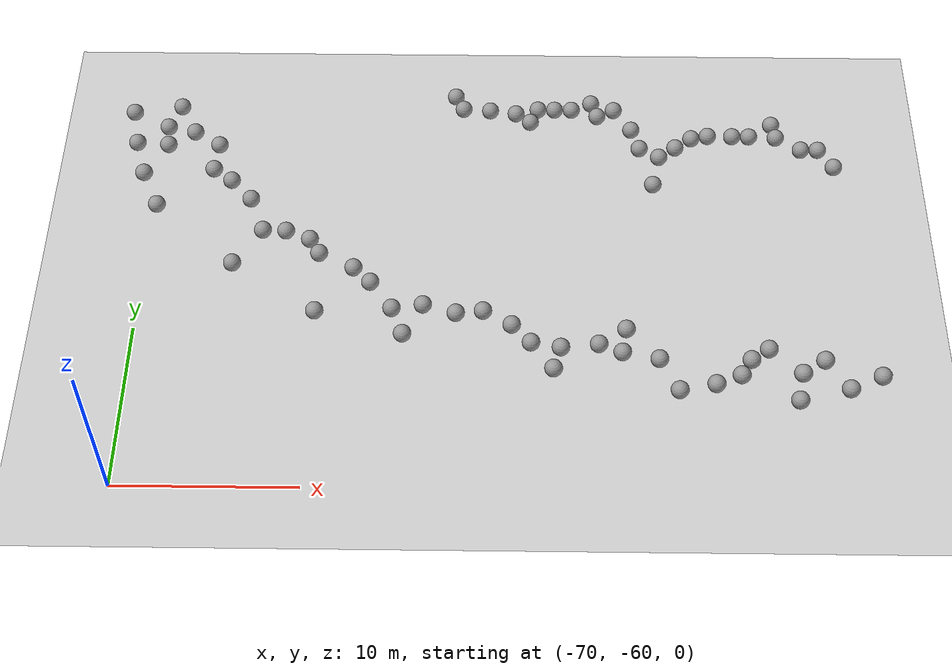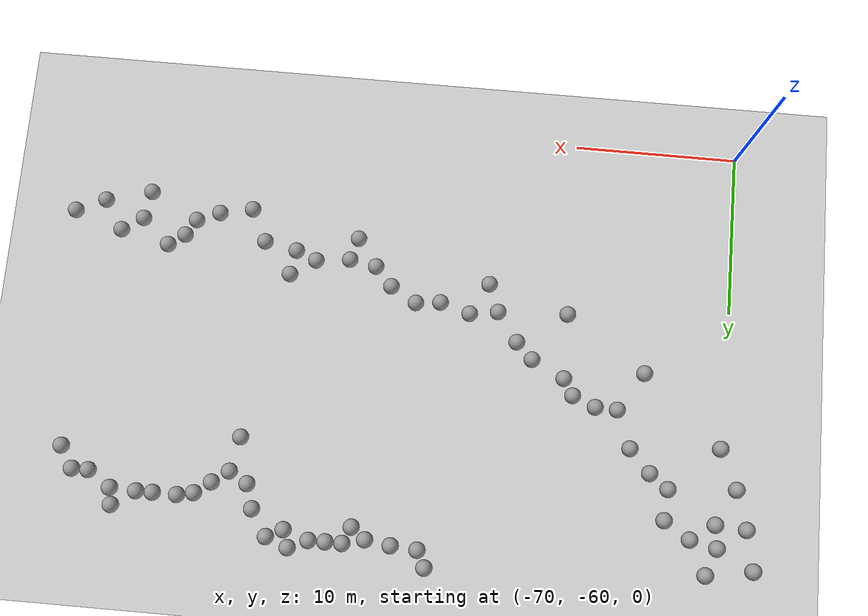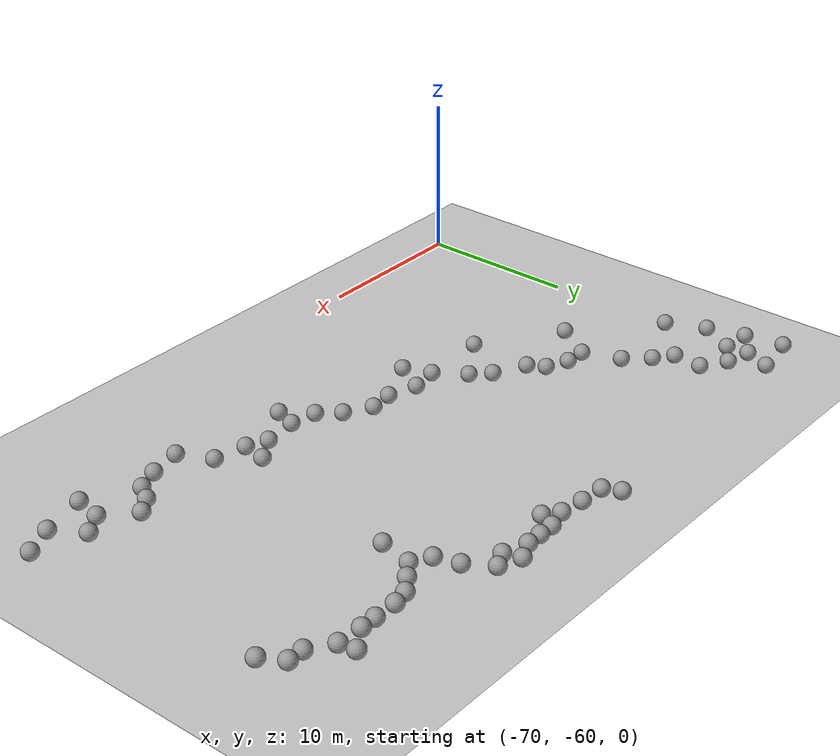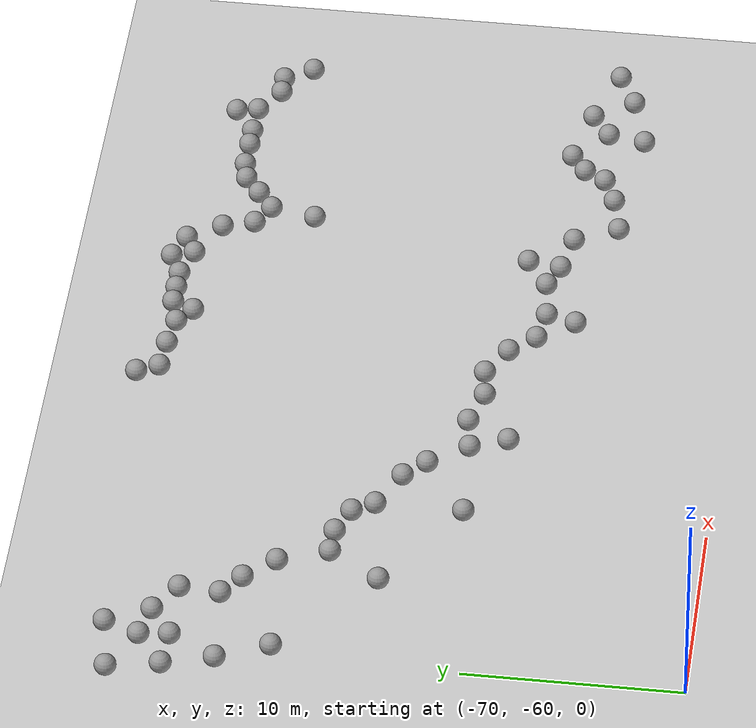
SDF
<sdf version="1.6">
 <world name="default">
  <model name="ground_plane">
   <static>1</static>
   <link name="link">
    <collision name="collision">
     <geometry><plane><normal>0 0 1</normal><size>100 100</size></plane></geometry>
     <surface><friction><ode><mu>100</mu><mu2>50</mu2></ode></friction></surface>
    </collision>
    <visual name="visual">
     <cast_shadows>0</cast_shadows>
     <geometry><plane><normal>0 0 1</normal><size>100 100</size></plane></geometry>
     <material>
      <script><uri>file://media/materials/scripts/gazebo.material</uri><name>Gazebo/Grey</name></script>
     </material>
    </visual>
   </link>
  </model>
  <model name="unit_sphere_0_clone_32">
   <pose>-35.0036 -51.2997 0.5 0 -0 0</pose>
   <link name="link">
    <inertial>
     <mass>1</mass>
     <inertia><ixx>0.1</ixx><ixy>0</ixy><ixz>0</ixz><iyy>0.1</iyy><iyz>0</iyz><izz>0.1</izz></inertia>
    </inertial>
    <collision name="collision"><geometry><sphere><radius>0.5</radius></sphere></geometry></collision>
    <visual name="visual">
     <geometry><sphere><radius>0.5</radius></sphere></geometry>
     <material>
      <script><name>Gazebo/Grey</name><uri>file://media/materials/scripts/gazebo.material</uri></script>
     </material>
    </visual>
   </link>
  </model>
  <model name="unit_sphere_0_clone_33">
   <pose>-42.7451 -50.0544 0.5 0 -0 0</pose>
   <link name="link">
    <inertial>
     <mass>1</mass>
     <inertia><ixx>0.1</ixx><ixy>0</ixy><ixz>0</ixz><iyy>0.1</iyy><iyz>0</iyz><izz>0.1</izz></inertia>
    </inertial>
    <collision name="collision"><geometry><sphere><radius>0.5</radius></sphere></geometry></collision>
    <visual name="visual">
     <geometry><sphere><radius>0.5</radius></sphere></geometry>
     <material>
      <script><name>Gazebo/Grey</name><uri>file://media/materials/scripts/gazebo.material</uri></script>
     </material>
    </visual>
   </link>
  </model>
  <model name="unit_sphere_0_clone_34">
   <pose>-50.6516 -48.9094 0.5 0 -0 0</pose>
   <link name="link">
    <inertial>
     <mass>1</mass>
     <inertia><ixx>0.1</ixx><ixy>0</ixy><ixz>0</ixz><iyy>0.1</iyy><iyz>0</iyz><izz>0.1</izz></inertia>
    </inertial>
    <collision name="collision"><geometry><sphere><radius>0.5</radius></sphere></geometry></collision>
    <visual name="visual">
     <geometry><sphere><radius>0.5</radius></sphere></geometry>
     <material>
      <script><name>Gazebo/Grey</name><uri>file://media/materials/scripts/gazebo.material</uri></script>
     </material>
    </visual>
   </link>
  </model>
  <model name="unit_sphere_0_clone_35">
   <pose>-60 -45 0.5 0 -0 0</pose>
   <link name="link">
    <inertial>
     <mass>1</mass>
     <inertia><ixx>0.1</ixx><ixy>0</ixy><ixz>0</ixz><iyy>0.1</iyy><iyz>0</iyz><izz>0.1</izz></inertia>
    </inertial>
    <collision name="collision"><geometry><sphere><radius>0.5</radius></sphere></geometry></collision>
    <visual name="visual">
     <geometry><sphere><radius>0.5</radius></sphere></geometry>
     <material>
      <script><name>Gazebo/Grey</name><uri>file://media/materials/scripts/gazebo.material</uri></script>
     </material>
    </visual>
   </link>
  </model>
  <model name="unit_sphere_0_clone_36">
   <pose>-66.593 -38.8584 0.5 0 -0 0</pose>
   <link name="link">
    <inertial>
     <mass>1</mass>
     <inertia><ixx>0.1</ixx><ixy>0</ixy><ixz>0</ixz><iyy>0.1</iyy><iyz>0</iyz><izz>0.1</izz></inertia>
    </inertial>
    <collision name="collision"><geometry><sphere><radius>0.5</radius></sphere></geometry></collision>
    <visual name="visual">
     <geometry><sphere><radius>0.5</radius></sphere></geometry>
     <material>
      <script><name>Gazebo/Grey</name><uri>file://media/materials/scripts/gazebo.material</uri></script>
     </material>
    </visual>
   </link>
  </model>
  <model name="unit_sphere_0_clone_59">
   <pose>-40.8608 -39.7517 0.5 0 -0 0</pose>
   <link name="link">
    <inertial>
     <mass>1</mass>
     <inertia><ixx>0.1</ixx><ixy>0</ixy><ixz>0</ixz><iyy>0.1</iyy><iyz>0</iyz><izz>0.1</izz></inertia>
    </inertial>
    <collision name="collision"><geometry><sphere><radius>0.5</radius></sphere></geometry></collision>
    <visual name="visual">
     <geometry><sphere><radius>0.5</radius></sphere></geometry>
     <material>
      <script><name>Gazebo/Grey</name><uri>file://media/materials/scripts/gazebo.material</uri></script>
     </material>
    </visual>
   </link>
  </model>
  <model name="unit_sphere_0_clone_79">
   <pose>-33.6084 -35.0655 0.5 -0.021126 -0.004099 2.9e-05</pose>
   <link name="link">
    <inertial>
     <mass>1</mass>
     <inertia><ixx>0.1</ixx><ixy>0</ixy><ixz>0</ixz><iyy>0.1</iyy><iyz>0</iyz><izz>0.1</izz></inertia>
    </inertial>
    <collision name="collision"><geometry><sphere><radius>0.5</radius></sphere></geometry></collision>
    <visual name="visual">
     <geometry><sphere><radius>0.5</radius></sphere></geometry>
     <material>
      <script><name>Gazebo/Grey</name><uri>file://media/materials/scripts/gazebo.material</uri></script>
     </material>
    </visual>
   </link>
  </model>
  <model name="unit_sphere_0_clone_80">
   <pose>-38.447 -36.1913 0.5 0.001999 -0.009864 -2.4e-05</pose>
   <link name="link">
    <inertial>
     <mass>1</mass>
     <inertia><ixx>0.1</ixx><ixy>0</ixy><ixz>0</ixz><iyy>0.1</iyy><iyz>0</iyz><izz>0.1</izz></inertia>
    </inertial>
    <collision name="collision"><geometry><sphere><radius>0.5</radius></sphere></geometry></collision>
    <visual name="visual">
     <geometry><sphere><radius>0.5</radius></sphere></geometry>
     <material>
      <script><name>Gazebo/Grey</name><uri>file://media/materials/scripts/gazebo.material</uri></script>
     </material>
    </visual>
   </link>
  </model>
  <model name="unit_sphere_0_clone_81">
   <pose>-44.3514 -33.4726 0.5 0 -0 0</pose>
   <link name="link">
    <inertial>
     <mass>1</mass>
     <inertia><ixx>0.1</ixx><ixy>0</ixy><ixz>0</ixz><iyy>0.1</iyy><iyz>0</iyz><izz>0.1</izz></inertia>
    </inertial>
    <collision name="collision"><geometry><sphere><radius>0.5</radius></sphere></geometry></collision>
    <visual name="visual">
     <geometry><sphere><radius>0.5</radius></sphere></geometry>
     <material>
      <script><name>Gazebo/Grey</name><uri>file://media/materials/scripts/gazebo.material</uri></script>
     </material>
    </visual>
   </link>
  </model>
  <model name="unit_sphere_0_clone_82">
   <pose>-48.8628 -34.3303 0.5 0 -0 0</pose>
   <link name="link">
    <inertial>
     <mass>1</mass>
     <inertia><ixx>0.1</ixx><ixy>0</ixy><ixz>0</ixz><iyy>0.1</iyy><iyz>0</iyz><izz>0.1</izz></inertia>
    </inertial>
    <collision name="collision"><geometry><sphere><radius>0.5</radius></sphere></geometry></collision>
    <visual name="visual">
     <geometry><sphere><radius>0.5</radius></sphere></geometry>
     <material>
      <script><name>Gazebo/Grey</name><uri>file://media/materials/scripts/gazebo.material</uri></script>
     </material>
    </visual>
   </link>
  </model>
  <model name="unit_sphere_0_clone_95">
   <pose>-71.8064 -34.4733 0.5 0 -0 0</pose>
   <link name="link">
    <inertial>
     <mass>1</mass>
     <inertia><ixx>0.1</ixx><ixy>0</ixy><ixz>0</ixz><iyy>0.1</iyy><iyz>0</iyz><izz>0.1</izz></inertia>
    </inertial>
    <collision name="collision"><geometry><sphere><radius>0.5</radius></sphere></geometry></collision>
    <visual name="visual">
     <geometry><sphere><radius>0.5</radius></sphere></geometry>
     <material>
      <script><name>Gazebo/Grey</name><uri>file://media/materials/scripts/gazebo.material</uri></script>
     </material>
    </visual>
   </link>
  </model>
  <model name="unit_sphere_0_clone_134">
   <pose>-33.5925 -54.5777 0.5 0 -0 0</pose>
   <link name="link">
    <inertial>
     <mass>1</mass>
     <inertia><ixx>0.1</ixx><ixy>0</ixy><ixz>0</ixz><iyy>0.1</iyy><iyz>0</iyz><izz>0.1</izz></inertia>
    </inertial>
    <collision name="collision"><geometry><sphere><radius>0.5</radius></sphere></geometry></collision>
    <visual name="visual">
     <geometry><sphere><radius>0.5</radius></sphere></geometry>
     <material>
      <script><name>Gazebo/Grey</name><uri>file://media/materials/scripts/gazebo.material</uri></script>
     </material>
    </visual>
   </link>
  </model>
  <model name="unit_sphere_0_clone_135">
   <pose>-40 -54 0.5 0 -0 0</pose>
   <link name="link">
    <inertial>
     <mass>1</mass>
     <inertia><ixx>0.1</ixx><ixy>0</ixy><ixz>0</ixz><iyy>0.1</iyy><iyz>0</iyz><izz>0.1</izz></inertia>
    </inertial>
    <collision name="collision"><geometry><sphere><radius>0.5</radius></sphere></geometry></collision>
    <visual name="visual">
     <geometry><sphere><radius>0.5</radius></sphere></geometry>
     <material>
      <script><name>Gazebo/Grey</name><uri>file://media/materials/scripts/gazebo.material</uri></script>
     </material>
    </visual>
   </link>
  </model>
  <model name="unit_sphere_0_clone_136">
   <pose>-46.775 -52.6831 0.5 0 -0 0</pose>
   <link name="link">
    <inertial>
     <mass>1</mass>
     <inertia><ixx>0.1</ixx><ixy>0</ixy><ixz>0</ixz><iyy>0.1</iyy><iyz>0</iyz><izz>0.1</izz></inertia>
    </inertial>
    <collision name="collision"><geometry><sphere><radius>0.5</radius></sphere></geometry></collision>
    <visual name="visual">
     <geometry><sphere><radius>0.5</radius></sphere></geometry>
     <material>
      <script><name>Gazebo/Grey</name><uri>file://media/materials/scripts/gazebo.material</uri></script>
     </material>
    </visual>
   </link>
  </model>
  <model name="unit_sphere_0_clone_137">
   <pose>-55.0734 -50.4876 0.5 0 -0 0</pose>
   <link name="link">
    <inertial>
     <mass>1</mass>
     <inertia><ixx>0.1</ixx><ixy>0</ixy><ixz>0</ixz><iyy>0.1</iyy><iyz>0</iyz><izz>0.1</izz></inertia>
    </inertial>
    <collision name="collision"><geometry><sphere><radius>0.5</radius></sphere></geometry></collision>
    <visual name="visual">
     <geometry><sphere><radius>0.5</radius></sphere></geometry>
     <material>
      <script><name>Gazebo/Grey</name><uri>file://media/materials/scripts/gazebo.material</uri></script>
     </material>
    </visual>
   </link>
  </model>
  <model name="unit_sphere_0_clone_138">
   <pose>-60 -49 0.5 0 -0 0</pose>
   <link name="link">
    <inertial>
     <mass>1</mass>
     <inertia><ixx>0.1</ixx><ixy>0</ixy><ixz>0</ixz><iyy>0.1</iyy><iyz>0</iyz><izz>0.1</izz></inertia>
    </inertial>
    <collision name="collision"><geometry><sphere><radius>0.5</radius></sphere></geometry></collision>
    <visual name="visual">
     <geometry><sphere><radius>0.5</radius></sphere></geometry>
     <material>
      <script><name>Gazebo/Grey</name><uri>file://media/materials/scripts/gazebo.material</uri></script>
     </material>
    </visual>
   </link>
  </model>
  <model name="unit_sphere_0_clone_139">
   <pose>-55.7295 -48.7844 0.5 0 -0 0</pose>
   <link name="link">
    <inertial>
     <mass>1</mass>
     <inertia><ixx>0.1</ixx><ixy>0</ixy><ixz>0</ixz><iyy>0.1</iyy><iyz>0</iyz><izz>0.1</izz></inertia>
    </inertial>
    <collision name="collision"><geometry><sphere><radius>0.5</radius></sphere></geometry></collision>
    <visual name="visual">
     <geometry><sphere><radius>0.5</radius></sphere></geometry>
     <material>
      <script><name>Gazebo/Grey</name><uri>file://media/materials/scripts/gazebo.material</uri></script>
     </material>
    </visual>
   </link>
  </model>
  <model name="unit_sphere_0_clone_140">
   <pose>-63.3376 -43.3689 0.5 0 -0 0</pose>
   <link name="link">
    <inertial>
     <mass>1</mass>
     <inertia><ixx>0.1</ixx><ixy>0</ixy><ixz>0</ixz><iyy>0.1</iyy><iyz>0</iyz><izz>0.1</izz></inertia>
    </inertial>
    <collision name="collision"><geometry><sphere><radius>0.5</radius></sphere></geometry></collision>
    <visual name="visual">
     <geometry><sphere><radius>0.5</radius></sphere></geometry>
     <material>
      <script><name>Gazebo/Grey</name><uri>file://media/materials/scripts/gazebo.material</uri></script>
     </material>
    </visual>
   </link>
  </model>
  <model name="unit_sphere_0_clone_141">
   <pose>-64.8756 -45.7378 0.5 0 -0 0</pose>
   <link name="link">
    <inertial>
     <mass>1</mass>
     <inertia><ixx>0.1</ixx><ixy>0</ixy><ixz>0</ixz><iyy>0.1</iyy><iyz>0</iyz><izz>0.1</izz></inertia>
    </inertial>
    <collision name="collision"><geometry><sphere><radius>0.5</radius></sphere></geometry></collision>
    <visual name="visual">
     <geometry><sphere><radius>0.5</radius></sphere></geometry>
     <material>
      <script><name>Gazebo/Grey</name><uri>file://media/materials/scripts/gazebo.material</uri></script>
     </material>
    </visual>
   </link>
  </model>
  <model name="unit_sphere_0_clone_142">
   <pose>-64.2136 -41.0942 0.5 0 -0 0</pose>
   <link name="link">
    <inertial>
     <mass>1</mass>
     <inertia><ixx>0.1</ixx><ixy>0</ixy><ixz>0</ixz><iyy>0.1</iyy><iyz>0</iyz><izz>0.1</izz></inertia>
    </inertial>
    <collision name="collision"><geometry><sphere><radius>0.5</radius></sphere></geometry></collision>
    <visual name="visual">
     <geometry><sphere><radius>0.5</radius></sphere></geometry>
     <material>
      <script><name>Gazebo/Grey</name><uri>file://media/materials/scripts/gazebo.material</uri></script>
     </material>
    </visual>
   </link>
  </model>
  <model name="unit_sphere_0_clone_143">
   <pose>-69.6462 -41.5438 0.5 0 -0 0</pose>
   <link name="link">
    <inertial>
     <mass>1</mass>
     <inertia><ixx>0.1</ixx><ixy>0</ixy><ixz>0</ixz><iyy>0.1</iyy><iyz>0</iyz><izz>0.1</izz></inertia>
    </inertial>
    <collision name="collision"><geometry><sphere><radius>0.5</radius></sphere></geometry></collision>
    <visual name="visual">
     <geometry><sphere><radius>0.5</radius></sphere></geometry>
     <material>
      <script><name>Gazebo/Grey</name><uri>file://media/materials/scripts/gazebo.material</uri></script>
     </material>
    </visual>
   </link>
  </model>
  <model name="unit_sphere_0_clone_144">
   <pose>-69.6289 -35.619 0.5 0 -0 0</pose>
   <link name="link">
    <inertial>
     <mass>1</mass>
     <inertia><ixx>0.1</ixx><ixy>0</ixy><ixz>0</ixz><iyy>0.1</iyy><iyz>0</iyz><izz>0.1</izz></inertia>
    </inertial>
    <collision name="collision"><geometry><sphere><radius>0.5</radius></sphere></geometry></collision>
    <visual name="visual">
     <geometry><sphere><radius>0.5</radius></sphere></geometry>
     <material>
      <script><name>Gazebo/Grey</name><uri>file://media/materials/scripts/gazebo.material</uri></script>
     </material>
    </visual>
   </link>
  </model>
  <model name="unit_sphere_1_clone_47">
   <pose>-30.1874 -38.3144 0.5 0 -0 0</pose>
   <link name="link">
    <inertial>
     <mass>1</mass>
     <inertia><ixx>0.1</ixx><ixy>0</ixy><ixz>0</ixz><iyy>0.1</iyy><iyz>0</iyz><izz>0.1</izz></inertia>
    </inertial>
    <collision name="collision"><geometry><sphere><radius>0.5</radius></sphere></geometry></collision>
    <visual name="visual">
     <geometry><sphere><radius>0.5</radius></sphere></geometry>
     <material>
      <script><name>Gazebo/Grey</name><uri>file://media/materials/scripts/gazebo.material</uri></script>
     </material>
    </visual>
   </link>
  </model>
  <model name="unit_sphere_1_clone_48">
   <pose>-31 -37 0.5 0 -0 0</pose>
   <link name="link">
    <inertial>
     <mass>1</mass>
     <inertia><ixx>0.1</ixx><ixy>0</ixy><ixz>0</ixz><iyy>0.1</iyy><iyz>0</iyz><izz>0.1</izz></inertia>
    </inertial>
    <collision name="collision"><geometry><sphere><radius>0.5</radius></sphere></geometry></collision>
    <visual name="visual">
     <geometry><sphere><radius>0.5</radius></sphere></geometry>
     <material>
      <script><name>Gazebo/Grey</name><uri>file://media/materials/scripts/gazebo.material</uri></script>
     </material>
    </visual>
   </link>
  </model>
  <model name="unit_sphere_1_clone_49">
   <pose>-32 -37 0.5 0 -0 0</pose>
   <link name="link">
    <inertial>
     <mass>1</mass>
     <inertia><ixx>0.1</ixx><ixy>0</ixy><ixz>0</ixz><iyy>0.1</iyy><iyz>0</iyz><izz>0.1</izz></inertia>
    </inertial>
    <collision name="collision"><geometry><sphere><radius>0.5</radius></sphere></geometry></collision>
    <visual name="visual">
     <geometry><sphere><radius>0.5</radius></sphere></geometry>
     <material>
      <script><name>Gazebo/Grey</name><uri>file://media/materials/scripts/gazebo.material</uri></script>
     </material>
    </visual>
   </link>
  </model>
  <model name="unit_sphere_1_clone_50">
   <pose>-33.4139 -36.0682 0.5 0.021036 0.004181 3e-05</pose>
   <link name="link">
    <inertial>
     <mass>1</mass>
     <inertia><ixx>0.1</ixx><ixy>0</ixy><ixz>0</ixz><iyy>0.1</iyy><iyz>0</iyz><izz>0.1</izz></inertia>
    </inertial>
    <collision name="collision"><geometry><sphere><radius>0.5</radius></sphere></geometry></collision>
    <visual name="visual">
     <geometry><sphere><radius>0.5</radius></sphere></geometry>
     <material>
      <script><name>Gazebo/Grey</name><uri>file://media/materials/scripts/gazebo.material</uri></script>
     </material>
    </visual>
   </link>
  </model>
  <model name="unit_sphere_1_clone_51">
   <pose>-35 -36 0.5 0 -0 0</pose>
   <link name="link">
    <inertial>
     <mass>1</mass>
     <inertia><ixx>0.1</ixx><ixy>0</ixy><ixz>0</ixz><iyy>0.1</iyy><iyz>0</iyz><izz>0.1</izz></inertia>
    </inertial>
    <collision name="collision"><geometry><sphere><radius>0.5</radius></sphere></geometry></collision>
    <visual name="visual">
     <geometry><sphere><radius>0.5</radius></sphere></geometry>
     <material>
      <script><name>Gazebo/Grey</name><uri>file://media/materials/scripts/gazebo.material</uri></script>
     </material>
    </visual>
   </link>
  </model>
  <model name="unit_sphere_1_clone_52">
   <pose>-36 -36 0.5 0 -0 0</pose>
   <link name="link">
    <inertial>
     <mass>1</mass>
     <inertia><ixx>0.1</ixx><ixy>0</ixy><ixz>0</ixz><iyy>0.1</iyy><iyz>0</iyz><izz>0.1</izz></inertia>
    </inertial>
    <collision name="collision"><geometry><sphere><radius>0.5</radius></sphere></geometry></collision>
    <visual name="visual">
     <geometry><sphere><radius>0.5</radius></sphere></geometry>
     <material>
      <script><name>Gazebo/Grey</name><uri>file://media/materials/scripts/gazebo.material</uri></script>
     </material>
    </visual>
   </link>
  </model>
  <model name="unit_sphere_1_clone_53">
   <pose>-37.4571 -35.9907 0.5 -0.002084 0.009818 -2.3e-05</pose>
   <link name="link">
    <inertial>
     <mass>1</mass>
     <inertia><ixx>0.1</ixx><ixy>0</ixy><ixz>0</ixz><iyy>0.1</iyy><iyz>0</iyz><izz>0.1</izz></inertia>
    </inertial>
    <collision name="collision"><geometry><sphere><radius>0.5</radius></sphere></geometry></collision>
    <visual name="visual">
     <geometry><sphere><radius>0.5</radius></sphere></geometry>
     <material>
      <script><name>Gazebo/Grey</name><uri>file://media/materials/scripts/gazebo.material</uri></script>
     </material>
    </visual>
   </link>
  </model>
  <model name="unit_sphere_1_clone_54">
   <pose>-39.4311 -36.9155 0.5 0 -0 0</pose>
   <link name="link">
    <inertial>
     <mass>1</mass>
     <inertia><ixx>0.1</ixx><ixy>0</ixy><ixz>0</ixz><iyy>0.1</iyy><iyz>0</iyz><izz>0.1</izz></inertia>
    </inertial>
    <collision name="collision"><geometry><sphere><radius>0.5</radius></sphere></geometry></collision>
    <visual name="visual">
     <geometry><sphere><radius>0.5</radius></sphere></geometry>
     <material>
      <script><name>Gazebo/Grey</name><uri>file://media/materials/scripts/gazebo.material</uri></script>
     </material>
    </visual>
   </link>
  </model>
  <model name="unit_sphere_1_clone_55">
   <pose>-40.4273 -37.6559 0.5 0 -0 0</pose>
   <link name="link">
    <inertial>
     <mass>1</mass>
     <inertia><ixx>0.1</ixx><ixy>0</ixy><ixz>0</ixz><iyy>0.1</iyy><iyz>0</iyz><izz>0.1</izz></inertia>
    </inertial>
    <collision name="collision"><geometry><sphere><radius>0.5</radius></sphere></geometry></collision>
    <visual name="visual">
     <geometry><sphere><radius>0.5</radius></sphere></geometry>
     <material>
      <script><name>Gazebo/Grey</name><uri>file://media/materials/scripts/gazebo.material</uri></script>
     </material>
    </visual>
   </link>
  </model>
  <model name="unit_sphere_1_clone_56">
   <pose>-41.5568 -37 0.5 0 -0 0</pose>
   <link name="link">
    <inertial>
     <mass>1</mass>
     <inertia><ixx>0.1</ixx><ixy>0</ixy><ixz>0</ixz><iyy>0.1</iyy><iyz>0</iyz><izz>0.1</izz></inertia>
    </inertial>
    <collision name="collision"><geometry><sphere><radius>0.5</radius></sphere></geometry></collision>
    <visual name="visual">
     <geometry><sphere><radius>0.5</radius></sphere></geometry>
     <material>
      <script><name>Gazebo/Grey</name><uri>file://media/materials/scripts/gazebo.material</uri></script>
     </material>
    </visual>
   </link>
  </model>
  <model name="unit_sphere_1_clone_57">
   <pose>-42 -35.5497 0.5 0 -0 0</pose>
   <link name="link">
    <inertial>
     <mass>1</mass>
     <inertia><ixx>0.1</ixx><ixy>0</ixy><ixz>0</ixz><iyy>0.1</iyy><iyz>0</iyz><izz>0.1</izz></inertia>
    </inertial>
    <collision name="collision"><geometry><sphere><radius>0.5</radius></sphere></geometry></collision>
    <visual name="visual">
     <geometry><sphere><radius>0.5</radius></sphere></geometry>
     <material>
      <script><name>Gazebo/Grey</name><uri>file://media/materials/scripts/gazebo.material</uri></script>
     </material>
    </visual>
   </link>
  </model>
  <model name="unit_sphere_1_clone_58">
   <pose>-43 -34 0.5 0 -0 0</pose>
   <link name="link">
    <inertial>
     <mass>1</mass>
     <inertia><ixx>0.1</ixx><ixy>0</ixy><ixz>0</ixz><iyy>0.1</iyy><iyz>0</iyz><izz>0.1</izz></inertia>
    </inertial>
    <collision name="collision"><geometry><sphere><radius>0.5</radius></sphere></geometry></collision>
    <visual name="visual">
     <geometry><sphere><radius>0.5</radius></sphere></geometry>
     <material>
      <script><name>Gazebo/Grey</name><uri>file://media/materials/scripts/gazebo.material</uri></script>
     </material>
    </visual>
   </link>
  </model>
  <model name="unit_sphere_1_clone_59">
   <pose>-44 -34.4924 0.5 0 -0 0</pose>
   <link name="link">
    <inertial>
     <mass>1</mass>
     <inertia><ixx>0.1</ixx><ixy>0</ixy><ixz>0</ixz><iyy>0.1</iyy><iyz>0</iyz><izz>0.1</izz></inertia>
    </inertial>
    <collision name="collision"><geometry><sphere><radius>0.5</radius></sphere></geometry></collision>
    <visual name="visual">
     <geometry><sphere><radius>0.5</radius></sphere></geometry>
     <material>
      <script><name>Gazebo/Grey</name><uri>file://media/materials/scripts/gazebo.material</uri></script>
     </material>
    </visual>
   </link>
  </model>
  <model name="unit_sphere_1_clone_60">
   <pose>-45.531 -34 0.5 0 0.012729 0</pose>
   <link name="link">
    <inertial>
     <mass>1</mass>
     <inertia><ixx>0.1</ixx><ixy>0</ixy><ixz>0</ixz><iyy>0.1</iyy><iyz>0</iyz><izz>0.1</izz></inertia>
    </inertial>
    <collision name="collision"><geometry><sphere><radius>0.5</radius></sphere></geometry></collision>
    <visual name="visual">
     <geometry><sphere><radius>0.5</radius></sphere></geometry>
     <material>
      <script><name>Gazebo/Grey</name><uri>file://media/materials/scripts/gazebo.material</uri></script>
     </material>
    </visual>
   </link>
  </model>
  <model name="unit_sphere_1_clone_61">
   <pose>-46.5435 -34 0.5 0 -0.012246 0</pose>
   <link name="link">
    <inertial>
     <mass>1</mass>
     <inertia><ixx>0.1</ixx><ixy>0</ixy><ixz>0</ixz><iyy>0.1</iyy><iyz>0</iyz><izz>0.1</izz></inertia>
    </inertial>
    <collision name="collision"><geometry><sphere><radius>0.5</radius></sphere></geometry></collision>
    <visual name="visual">
     <geometry><sphere><radius>0.5</radius></sphere></geometry>
     <material>
      <script><name>Gazebo/Grey</name><uri>file://media/materials/scripts/gazebo.material</uri></script>
     </material>
    </visual>
   </link>
  </model>
  <model name="unit_sphere_1_clone_62">
   <pose>-47.544 -34 0.5 0 -0.013584 0</pose>
   <link name="link">
    <inertial>
     <mass>1</mass>
     <inertia><ixx>0.1</ixx><ixy>0</ixy><ixz>0</ixz><iyy>0.1</iyy><iyz>0</iyz><izz>0.1</izz></inertia>
    </inertial>
    <collision name="collision"><geometry><sphere><radius>0.5</radius></sphere></geometry></collision>
    <visual name="visual">
     <geometry><sphere><radius>0.5</radius></sphere></geometry>
     <material>
      <script><name>Gazebo/Grey</name><uri>file://media/materials/scripts/gazebo.material</uri></script>
     </material>
    </visual>
   </link>
  </model>
  <model name="unit_sphere_1_clone_63">
   <pose>-48 -35 0.5 0 -0 0</pose>
   <link name="link">
    <inertial>
     <mass>1</mass>
     <inertia><ixx>0.1</ixx><ixy>0</ixy><ixz>0</ixz><iyy>0.1</iyy><iyz>0</iyz><izz>0.1</izz></inertia>
    </inertial>
    <collision name="collision"><geometry><sphere><radius>0.5</radius></sphere></geometry></collision>
    <visual name="visual">
     <geometry><sphere><radius>0.5</radius></sphere></geometry>
     <material>
      <script><name>Gazebo/Grey</name><uri>file://media/materials/scripts/gazebo.material</uri></script>
     </material>
    </visual>
   </link>
  </model>
  <model name="unit_sphere_1_clone_64">
   <pose>-50.4013 -34.1159 0.5 0 -0 0</pose>
   <link name="link">
    <inertial>
     <mass>1</mass>
     <inertia><ixx>0.1</ixx><ixy>0</ixy><ixz>0</ixz><iyy>0.1</iyy><iyz>0</iyz><izz>0.1</izz></inertia>
    </inertial>
    <collision name="collision"><geometry><sphere><radius>0.5</radius></sphere></geometry></collision>
    <visual name="visual">
     <geometry><sphere><radius>0.5</radius></sphere></geometry>
     <material>
      <script><name>Gazebo/Grey</name><uri>file://media/materials/scripts/gazebo.material</uri></script>
     </material>
    </visual>
   </link>
  </model>
  <model name="unit_sphere_1_clone_65">
   <pose>-52 -34 0.5 0 -0 0</pose>
   <link name="link">
    <inertial>
     <mass>1</mass>
     <inertia><ixx>0.1</ixx><ixy>0</ixy><ixz>0</ixz><iyy>0.1</iyy><iyz>0</iyz><izz>0.1</izz></inertia>
    </inertial>
    <collision name="collision"><geometry><sphere><radius>0.5</radius></sphere></geometry></collision>
    <visual name="visual">
     <geometry><sphere><radius>0.5</radius></sphere></geometry>
     <material>
      <script><name>Gazebo/Grey</name><uri>file://media/materials/scripts/gazebo.material</uri></script>
     </material>
    </visual>
   </link>
  </model>
  <model name="unit_sphere_1_clone_66">
   <pose>-52.4907 -33 0.5 0 -0 0</pose>
   <link name="link">
    <inertial>
     <mass>1</mass>
     <inertia><ixx>0.1</ixx><ixy>0</ixy><ixz>0</ixz><iyy>0.1</iyy><iyz>0</iyz><izz>0.1</izz></inertia>
    </inertial>
    <collision name="collision"><geometry><sphere><radius>0.5</radius></sphere></geometry></collision>
    <visual name="visual">
     <geometry><sphere><radius>0.5</radius></sphere></geometry>
     <material>
      <script><name>Gazebo/Grey</name><uri>file://media/materials/scripts/gazebo.material</uri></script>
     </material>
    </visual>
   </link>
  </model>
  <model name="unit_sphere_1_clone_204">
   <pose>-71.3521 -36.8612 0.5 0 -0 0</pose>
   <link name="link">
    <inertial>
     <mass>1</mass>
     <inertia><ixx>0.1</ixx><ixy>0</ixy><ixz>0</ixz><iyy>0.1</iyy><iyz>0</iyz><izz>0.1</izz></inertia>
    </inertial>
    <collision name="collision"><geometry><sphere><radius>0.5</radius></sphere></geometry></collision>
    <visual name="visual">
     <geometry><sphere><radius>0.5</radius></sphere></geometry>
     <material>
      <script><name>Gazebo/Grey</name><uri>file://media/materials/scripts/gazebo.material</uri></script>
     </material>
    </visual>
   </link>
  </model>
  <model name="unit_sphere_1_clone_205">
   <pose>-68 -36 0.5 0 -0 0</pose>
   <link name="link">
    <inertial>
     <mass>1</mass>
     <inertia><ixx>0.1</ixx><ixy>0</ixy><ixz>0</ixz><iyy>0.1</iyy><iyz>0</iyz><izz>0.1</izz></inertia>
    </inertial>
    <collision name="collision"><geometry><sphere><radius>0.5</radius></sphere></geometry></collision>
    <visual name="visual">
     <geometry><sphere><radius>0.5</radius></sphere></geometry>
     <material>
      <script><name>Gazebo/Grey</name><uri>file://media/materials/scripts/gazebo.material</uri></script>
     </material>
    </visual>
   </link>
  </model>
  <model name="unit_sphere_1_clone_206">
   <pose>-69 -34 0.5 0 -0 0</pose>
   <link name="link">
    <inertial>
     <mass>1</mass>
     <inertia><ixx>0.1</ixx><ixy>0</ixy><ixz>0</ixz><iyy>0.1</iyy><iyz>0</iyz><izz>0.1</izz></inertia>
    </inertial>
    <collision name="collision"><geometry><sphere><radius>0.5</radius></sphere></geometry></collision>
    <visual name="visual">
     <geometry><sphere><radius>0.5</radius></sphere></geometry>
     <material>
      <script><name>Gazebo/Grey</name><uri>file://media/materials/scripts/gazebo.material</uri></script>
     </material>
    </visual>
   </link>
  </model>
  <model name="unit_sphere_1_clone_208">
   <pose>-66.4492 -37 0.5 0 -0 0</pose>
   <link name="link">
    <inertial>
     <mass>1</mass>
     <inertia><ixx>0.1</ixx><ixy>0</ixy><ixz>0</ixz><iyy>0.1</iyy><iyz>0</iyz><izz>0.1</izz></inertia>
    </inertial>
    <collision name="collision"><geometry><sphere><radius>0.5</radius></sphere></geometry></collision>
    <visual name="visual">
     <geometry><sphere><radius>0.5</radius></sphere></geometry>
     <material>
      <script><name>Gazebo/Grey</name><uri>file://media/materials/scripts/gazebo.material</uri></script>
     </material>
    </visual>
   </link>
  </model>
  <model name="unit_sphere_1_clone_209">
   <pose>-70.6854 -39.173 0.5 0 -0 0</pose>
   <link name="link">
    <inertial>
     <mass>1</mass>
     <inertia><ixx>0.1</ixx><ixy>0</ixy><ixz>0</ixz><iyy>0.1</iyy><iyz>0</iyz><izz>0.1</izz></inertia>
    </inertial>
    <collision name="collision"><geometry><sphere><radius>0.5</radius></sphere></geometry></collision>
    <visual name="visual">
     <geometry><sphere><radius>0.5</radius></sphere></geometry>
     <material>
      <script><name>Gazebo/Grey</name><uri>file://media/materials/scripts/gazebo.material</uri></script>
     </material>
    </visual>
   </link>
  </model>
  <model name="unit_sphere_1_clone_210">
   <pose>-69.4884 -37 0.5 0 -0 0</pose>
   <link name="link">
    <inertial>
     <mass>1</mass>
     <inertia><ixx>0.1</ixx><ixy>0</ixy><ixz>0</ixz><iyy>0.1</iyy><iyz>0</iyz><izz>0.1</izz></inertia>
    </inertial>
    <collision name="collision"><geometry><sphere><radius>0.5</radius></sphere></geometry></collision>
    <visual name="visual">
     <geometry><sphere><radius>0.5</radius></sphere></geometry>
     <material>
      <script><name>Gazebo/Grey</name><uri>file://media/materials/scripts/gazebo.material</uri></script>
     </material>
    </visual>
   </link>
  </model>
  <model name="unit_sphere_1_clone_211">
   <pose>-65.4628 -39.713 0.5 0 -0 0</pose>
   <link name="link">
    <inertial>
     <mass>1</mass>
     <inertia><ixx>0.1</ixx><ixy>0</ixy><ixz>0</ixz><iyy>0.1</iyy><iyz>0</iyz><izz>0.1</izz></inertia>
    </inertial>
    <collision name="collision"><geometry><sphere><radius>0.5</radius></sphere></geometry></collision>
    <visual name="visual">
     <geometry><sphere><radius>0.5</radius></sphere></geometry>
     <material>
      <script><name>Gazebo/Grey</name><uri>file://media/materials/scripts/gazebo.material</uri></script>
     </material>
    </visual>
   </link>
  </model>
  <model name="unit_sphere_1_clone_212">
   <pose>-62 -43.4139 0.5 0 -0 0</pose>
   <link name="link">
    <inertial>
     <mass>1</mass>
     <inertia><ixx>0.1</ixx><ixy>0</ixy><ixz>0</ixz><iyy>0.1</iyy><iyz>0</iyz><izz>0.1</izz></inertia>
    </inertial>
    <collision name="collision"><geometry><sphere><radius>0.5</radius></sphere></geometry></collision>
    <visual name="visual">
     <geometry><sphere><radius>0.5</radius></sphere></geometry>
     <material>
      <script><name>Gazebo/Grey</name><uri>file://media/materials/scripts/gazebo.material</uri></script>
     </material>
    </visual>
   </link>
  </model>
  <model name="unit_sphere_1_clone_213">
   <pose>-58 -46 0.5 0 -0 0</pose>
   <link name="link">
    <inertial>
     <mass>1</mass>
     <inertia><ixx>0.1</ixx><ixy>0</ixy><ixz>0</ixz><iyy>0.1</iyy><iyz>0</iyz><izz>0.1</izz></inertia>
    </inertial>
    <collision name="collision"><geometry><sphere><radius>0.5</radius></sphere></geometry></collision>
    <visual name="visual">
     <geometry><sphere><radius>0.5</radius></sphere></geometry>
     <material>
      <script><name>Gazebo/Grey</name><uri>file://media/materials/scripts/gazebo.material</uri></script>
     </material>
    </visual>
   </link>
  </model>
  <model name="unit_sphere_1_clone_214">
   <pose>-60.5965 -44 0.5 0 -0 0</pose>
   <link name="link">
    <inertial>
     <mass>1</mass>
     <inertia><ixx>0.1</ixx><ixy>0</ixy><ixz>0</ixz><iyy>0.1</iyy><iyz>0</iyz><izz>0.1</izz></inertia>
    </inertial>
    <collision name="collision"><geometry><sphere><radius>0.5</radius></sphere></geometry></collision>
    <visual name="visual">
     <geometry><sphere><radius>0.5</radius></sphere></geometry>
     <material>
      <script><name>Gazebo/Grey</name><uri>file://media/materials/scripts/gazebo.material</uri></script>
     </material>
    </visual>
   </link>
  </model>
  <model name="unit_sphere_1_clone_215">
   <pose>-57 -47 0.5 0 -0 0</pose>
   <link name="link">
    <inertial>
     <mass>1</mass>
     <inertia><ixx>0.1</ixx><ixy>0</ixy><ixz>0</ixz><iyy>0.1</iyy><iyz>0</iyz><izz>0.1</izz></inertia>
    </inertial>
    <collision name="collision"><geometry><sphere><radius>0.5</radius></sphere></geometry></collision>
    <visual name="visual">
     <geometry><sphere><radius>0.5</radius></sphere></geometry>
     <material>
      <script><name>Gazebo/Grey</name><uri>file://media/materials/scripts/gazebo.material</uri></script>
     </material>
    </visual>
   </link>
  </model>
  <model name="unit_sphere_1_clone_216">
   <pose>-54 -48.5284 0.5 0 -0 0</pose>
   <link name="link">
    <inertial>
     <mass>1</mass>
     <inertia><ixx>0.1</ixx><ixy>0</ixy><ixz>0</ixz><iyy>0.1</iyy><iyz>0</iyz><izz>0.1</izz></inertia>
    </inertial>
    <collision name="collision"><geometry><sphere><radius>0.5</radius></sphere></geometry></collision>
    <visual name="visual">
     <geometry><sphere><radius>0.5</radius></sphere></geometry>
     <material>
      <script><name>Gazebo/Grey</name><uri>file://media/materials/scripts/gazebo.material</uri></script>
     </material>
    </visual>
   </link>
  </model>
  <model name="unit_sphere_1_clone_217">
   <pose>-52.1585 -49.074 0.5 0 -0 0</pose>
   <link name="link">
    <inertial>
     <mass>1</mass>
     <inertia><ixx>0.1</ixx><ixy>0</ixy><ixz>0</ixz><iyy>0.1</iyy><iyz>0</iyz><izz>0.1</izz></inertia>
    </inertial>
    <collision name="collision"><geometry><sphere><radius>0.5</radius></sphere></geometry></collision>
    <visual name="visual">
     <geometry><sphere><radius>0.5</radius></sphere></geometry>
     <material>
      <script><name>Gazebo/Grey</name><uri>file://media/materials/scripts/gazebo.material</uri></script>
     </material>
    </visual>
   </link>
  </model>
  <model name="unit_sphere_1_clone_218">
   <pose>-49.0573 -49.8279 0.5 0 -0 0</pose>
   <link name="link">
    <inertial>
     <mass>1</mass>
     <inertia><ixx>0.1</ixx><ixy>0</ixy><ixz>0</ixz><iyy>0.1</iyy><iyz>0</iyz><izz>0.1</izz></inertia>
    </inertial>
    <collision name="collision"><geometry><sphere><radius>0.5</radius></sphere></geometry></collision>
    <visual name="visual">
     <geometry><sphere><radius>0.5</radius></sphere></geometry>
     <material>
      <script><name>Gazebo/Grey</name><uri>file://media/materials/scripts/gazebo.material</uri></script>
     </material>
    </visual>
   </link>
  </model>
  <model name="unit_sphere_1_clone_219">
   <pose>-48 -51 0.5 0 -0 0</pose>
   <link name="link">
    <inertial>
     <mass>1</mass>
     <inertia><ixx>0.1</ixx><ixy>0</ixy><ixz>0</ixz><iyy>0.1</iyy><iyz>0</iyz><izz>0.1</izz></inertia>
    </inertial>
    <collision name="collision"><geometry><sphere><radius>0.5</radius></sphere></geometry></collision>
    <visual name="visual">
     <geometry><sphere><radius>0.5</radius></sphere></geometry>
     <material>
      <script><name>Gazebo/Grey</name><uri>file://media/materials/scripts/gazebo.material</uri></script>
     </material>
    </visual>
   </link>
  </model>
  <model name="unit_sphere_1_clone_220">
   <pose>-46.3636 -51.2998 0.5 0 -0 0</pose>
   <link name="link">
    <inertial>
     <mass>1</mass>
     <inertia><ixx>0.1</ixx><ixy>0</ixy><ixz>0</ixz><iyy>0.1</iyy><iyz>0</iyz><izz>0.1</izz></inertia>
    </inertial>
    <collision name="collision"><geometry><sphere><radius>0.5</radius></sphere></geometry></collision>
    <visual name="visual">
     <geometry><sphere><radius>0.5</radius></sphere></geometry>
     <material>
      <script><name>Gazebo/Grey</name><uri>file://media/materials/scripts/gazebo.material</uri></script>
     </material>
    </visual>
   </link>
  </model>
  <model name="unit_sphere_1_clone_221">
   <pose>-44.2746 -51.063 0.5 0 -0 0</pose>
   <link name="link">
    <inertial>
     <mass>1</mass>
     <inertia><ixx>0.1</ixx><ixy>0</ixy><ixz>0</ixz><iyy>0.1</iyy><iyz>0</iyz><izz>0.1</izz></inertia>
    </inertial>
    <collision name="collision"><geometry><sphere><radius>0.5</radius></sphere></geometry></collision>
    <visual name="visual">
     <geometry><sphere><radius>0.5</radius></sphere></geometry>
     <material>
      <script><name>Gazebo/Grey</name><uri>file://media/materials/scripts/gazebo.material</uri></script>
     </material>
    </visual>
   </link>
  </model>
  <model name="unit_sphere_1_clone_222">
   <pose>-43 -51.5835 0.5 0 -0 0</pose>
   <link name="link">
    <inertial>
     <mass>1</mass>
     <inertia><ixx>0.1</ixx><ixy>0</ixy><ixz>0</ixz><iyy>0.1</iyy><iyz>0</iyz><izz>0.1</izz></inertia>
    </inertial>
    <collision name="collision"><geometry><sphere><radius>0.5</radius></sphere></geometry></collision>
    <visual name="visual">
     <geometry><sphere><radius>0.5</radius></sphere></geometry>
     <material>
      <script><name>Gazebo/Grey</name><uri>file://media/materials/scripts/gazebo.material</uri></script>
     </material>
    </visual>
   </link>
  </model>
  <model name="unit_sphere_1_clone_223">
   <pose>-41 -52 0.5 0 -0 0</pose>
   <link name="link">
    <inertial>
     <mass>1</mass>
     <inertia><ixx>0.1</ixx><ixy>0</ixy><ixz>0</ixz><iyy>0.1</iyy><iyz>0</iyz><izz>0.1</izz></inertia>
    </inertial>
    <collision name="collision"><geometry><sphere><radius>0.5</radius></sphere></geometry></collision>
    <visual name="visual">
     <geometry><sphere><radius>0.5</radius></sphere></geometry>
     <material>
      <script><name>Gazebo/Grey</name><uri>file://media/materials/scripts/gazebo.material</uri></script>
     </material>
    </visual>
   </link>
  </model>
  <model name="unit_sphere_1_clone_224">
   <pose>-38 -53.5846 0.5 0 -0 0</pose>
   <link name="link">
    <inertial>
     <mass>1</mass>
     <inertia><ixx>0.1</ixx><ixy>0</ixy><ixz>0</ixz><iyy>0.1</iyy><iyz>0</iyz><izz>0.1</izz></inertia>
    </inertial>
    <collision name="collision"><geometry><sphere><radius>0.5</radius></sphere></geometry></collision>
    <visual name="visual">
     <geometry><sphere><radius>0.5</radius></sphere></geometry>
     <material>
      <script><name>Gazebo/Grey</name><uri>file://media/materials/scripts/gazebo.material</uri></script>
     </material>
    </visual>
   </link>
  </model>
  <model name="unit_sphere_1_clone_225">
   <pose>-36.5992 -53 0.5 0 -0 0</pose>
   <link name="link">
    <inertial>
     <mass>1</mass>
     <inertia><ixx>0.1</ixx><ixy>0</ixy><ixz>0</ixz><iyy>0.1</iyy><iyz>0</iyz><izz>0.1</izz></inertia>
    </inertial>
    <collision name="collision"><geometry><sphere><radius>0.5</radius></sphere></geometry></collision>
    <visual name="visual">
     <geometry><sphere><radius>0.5</radius></sphere></geometry>
     <material>
      <script><name>Gazebo/Grey</name><uri>file://media/materials/scripts/gazebo.material</uri></script>
     </material>
    </visual>
   </link>
  </model>
  <model name="unit_sphere_1_clone_226">
   <pose>-36 -52 0.5 0 -0 0</pose>
   <link name="link">
    <inertial>
     <mass>1</mass>
     <inertia><ixx>0.1</ixx><ixy>0</ixy><ixz>0</ixz><iyy>0.1</iyy><iyz>0</iyz><izz>0.1</izz></inertia>
    </inertial>
    <collision name="collision"><geometry><sphere><radius>0.5</radius></sphere></geometry></collision>
    <visual name="visual">
     <geometry><sphere><radius>0.5</radius></sphere></geometry>
     <material>
      <script><name>Gazebo/Grey</name><uri>file://media/materials/scripts/gazebo.material</uri></script>
     </material>
    </visual>
   </link>
  </model>
  <model name="unit_sphere_1_clone_227">
   <pose>-33.2782 -52.8543 0.5 0 -0 0</pose>
   <link name="link">
    <inertial>
     <mass>1</mass>
     <inertia><ixx>0.1</ixx><ixy>0</ixy><ixz>0</ixz><iyy>0.1</iyy><iyz>0</iyz><izz>0.1</izz></inertia>
    </inertial>
    <collision name="collision"><geometry><sphere><radius>0.5</radius></sphere></geometry></collision>
    <visual name="visual">
     <geometry><sphere><radius>0.5</radius></sphere></geometry>
     <material>
      <script><name>Gazebo/Grey</name><uri>file://media/materials/scripts/gazebo.material</uri></script>
     </material>
    </visual>
   </link>
  </model>
  <model name="unit_sphere_1_clone_228">
   <pose>-32 -52 0.5 0 -0 0</pose>
   <link name="link">
    <inertial>
     <mass>1</mass>
     <inertia><ixx>0.1</ixx><ixy>0</ixy><ixz>0</ixz><iyy>0.1</iyy><iyz>0</iyz><izz>0.1</izz></inertia>
    </inertial>
    <collision name="collision"><geometry><sphere><radius>0.5</radius></sphere></geometry></collision>
    <visual name="visual">
     <geometry><sphere><radius>0.5</radius></sphere></geometry>
     <material>
      <script><name>Gazebo/Grey</name><uri>file://media/materials/scripts/gazebo.material</uri></script>
     </material>
    </visual>
   </link>
  </model>
  <model name="unit_sphere_1_clone_229">
   <pose>-30.8011 -53.8292 0.5 0 -0 0</pose>
   <link name="link">
    <inertial>
     <mass>1</mass>
     <inertia><ixx>0.1</ixx><ixy>0</ixy><ixz>0</ixz><iyy>0.1</iyy><iyz>0</iyz><izz>0.1</izz></inertia>
    </inertial>
    <collision name="collision"><geometry><sphere><radius>0.5</radius></sphere></geometry></collision>
    <visual name="visual">
     <geometry><sphere><radius>0.5</radius></sphere></geometry>
     <material>
      <script><name>Gazebo/Grey</name><uri>file://media/materials/scripts/gazebo.material</uri></script>
     </material>
    </visual>
   </link>
  </model>
  <model name="unit_sphere_1_clone_230">
   <pose>-29 -53 0.5 0 -0 0</pose>
   <link name="link">
    <inertial>
     <mass>1</mass>
     <inertia><ixx>0.1</ixx><ixy>0</ixy><ixz>0</ixz><iyy>0.1</iyy><iyz>0</iyz><izz>0.1</izz></inertia>
    </inertial>
    <collision name="collision"><geometry><sphere><radius>0.5</radius></sphere></geometry></collision>
    <visual name="visual">
     <geometry><sphere><radius>0.5</radius></sphere></geometry>
     <material>
      <script><name>Gazebo/Grey</name><uri>file://media/materials/scripts/gazebo.material</uri></script>
     </material>
    </visual>
   </link>
  </model>
 </world>
</sdf>
